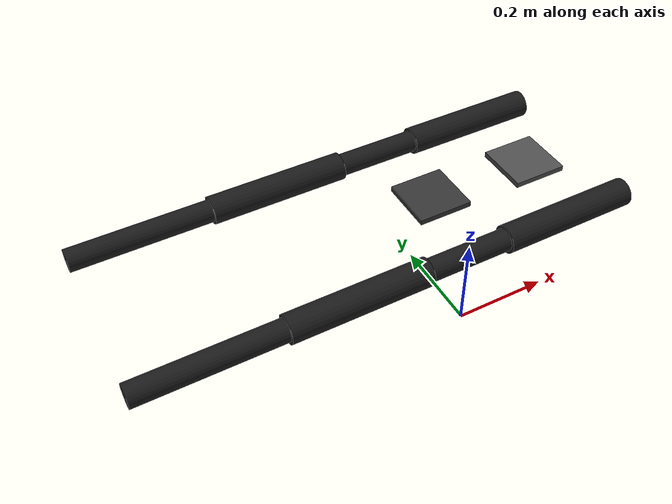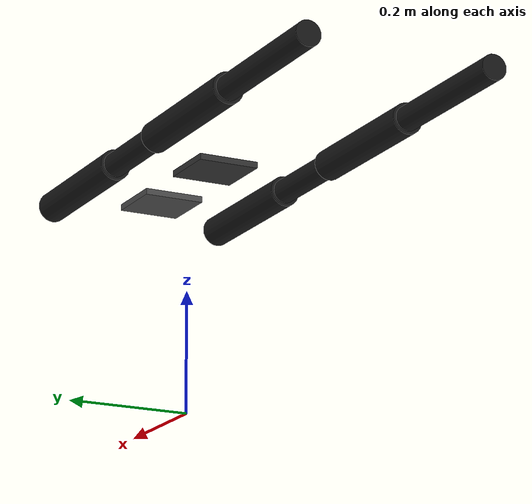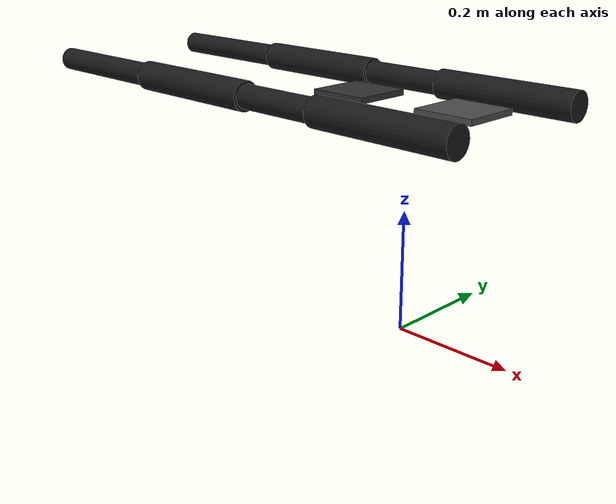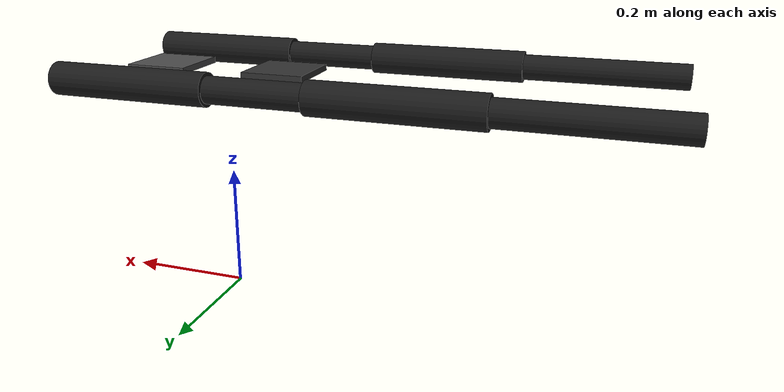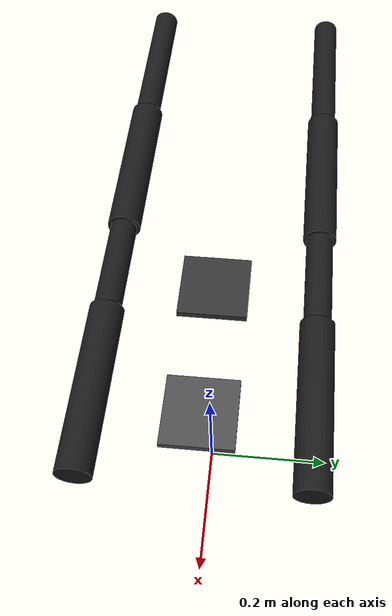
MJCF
<mujoco model="3D_Quad">
  <compiler angle="radian"/>
  <worldbody>
    <body name="torso_front_link" pos="0 0 0.375">
      <inertial pos="-0.0285714 0 0" quat="0.5 0.5 0.5 0.5" mass="1.4" diaginertia="0.0162471 0.0162471 0.00045"/>
      <joint name="world_to_torso_front_joint" type="free" limited="false" actuatorfrclimited="false"/>
      <geom size="0.05 0.05 0.005" pos="0.1 0 0" type="box" rgba="0.3 0.3 0.3 1"/>
      <geom size="0.05 0.05 0.005" pos="-0.1 0 0" type="box" rgba="0.2 0.2 0.2 1"/>

      <body name="FLHAA_link" pos="0.2 0.15 0" quat="0.707105 0 0.707108 0">
        <inertial pos="0 0 0" mass="3.2" diaginertia="0.0025 0.0025 0.0025"/>
        <joint name="FLHAA" pos="0 0 0" axis="0 0 -1" range="-0.8727 0.8727" actuatorfrcrange="-60 60"/>

        <body name="FLHIP_link">
          <inertial pos="0 0 -0.125" mass="0.3" diaginertia="0.0028 0.0028 0.0001567"/>
          <joint name="FLHIP" pos="0 0 0" axis="0 -1 0" range="0 3.14159" actuatorfrcrange="-60 60"/>
          <geom size="0.025 0.125" pos="0 0 -0.125" type="cylinder" rgba="0.1 0.1 0.1 1"/>

          <body name="FLKNEE_link" pos="0 0 -0.25">
            <inertial pos="0 0 -0.125" mass="0.3" diaginertia="0.0026 0.0026 0.0001"/>
            <joint name="FLKNEE" pos="0 0 0" axis="0 -1 0" range="0 3.14159" actuatorfrcrange="-60 60"/>
            <geom size="0.02 0.125" pos="0 0 -0.125" type="cylinder" rgba="0.1 0.1 0.1 1"/>
          </body>
        </body>
      </body>

      <body name="FRHAA_link" pos="0.2 -0.15 0" quat="0.707105 0 0.707108 0">
        <inertial pos="0 0 0" mass="3.2" diaginertia="0.0025 0.0025 0.0025"/>
        <joint name="FRHAA" pos="0 0 0" axis="0 0 -1" range="-0.8727 0.8727" actuatorfrcrange="-60 60"/>
        <body name="FRHIP_link">
          <inertial pos="0 0 -0.125" mass="0.3" diaginertia="0.0028 0.0028 0.0001567"/>
          <joint name="FRHIP" pos="0 0 0" axis="0 -1 0" range="0 3.14159" actuatorfrcrange="-60 60"/>
          <geom size="0.025 0.125" pos="0 0 -0.125" type="cylinder" rgba="0.1 0.1 0.1 1"/>
          <body name="FRKNEE_link" pos="0 0 -0.25">
            <inertial pos="0 0 -0.125" mass="0.3" diaginertia="0.0026 0.0026 0.0001"/>
            <joint name="FRKNEE" pos="0 0 0" axis="0 -1 0" range="0 3.14159" actuatorfrcrange="-60 60"/>
            <geom size="0.02 0.125" pos="0 0 -0.125" type="cylinder" rgba="0.1 0.1 0.1 1"/>
          </body>
        </body>
      </body>
      <body name="RLHAA_link" pos="-0.2 0.15 0" quat="0.707105 0 0.707108 0">
        <inertial pos="0 0 0" mass="3.2" diaginertia="0.0025 0.0025 0.0025"/>
        <joint name="RLHAA" pos="0 0 0" axis="0 0 -1" range="-0.8727 0.8727" actuatorfrcrange="-60 60"/>
        <body name="RLHIP_link">
          <inertial pos="0 0 -0.125" mass="0.3" diaginertia="0.0028 0.0028 0.0001567"/>
          <joint name="RLHIP" pos="0 0 0" axis="0 -1 0" range="0 3.14159" actuatorfrcrange="-60 60"/>
          <geom size="0.025 0.125" pos="0 0 -0.125" type="cylinder" rgba="0.1 0.1 0.1 1"/>
          <body name="RLKNEE_link" pos="0 0 -0.25">
            <inertial pos="0 0 -0.125" mass="0.3" diaginertia="0.0026 0.0026 0.0001"/>
            <joint name="RLKNEE" pos="0 0 0" axis="0 -1 0" range="0 3.14159" actuatorfrcrange="-60 60"/>
            <geom size="0.02 0.125" pos="0 0 -0.125" type="cylinder" rgba="0.1 0.1 0.1 1"/>
          </body>
        </body>
      </body>
      <body name="RRHAA_link" pos="-0.2 -0.15 0" quat="0.707105 0 0.707108 0">
        <inertial pos="0 0 0" mass="3.2" diaginertia="0.0025 0.0025 0.0025"/>
        <joint name="RRHAA" pos="0 0 0" axis="0 0 -1" range="-0.8727 0.8727" actuatorfrcrange="-60 60"/>
        <body name="RRHIP_link">
          <inertial pos="0 0 -0.125" mass="0.3" diaginertia="0.0028 0.0028 0.0001567"/>
          <joint name="RRHIP" pos="0 0 0" axis="0 -1 0" range="0 3.14159" actuatorfrcrange="-60 60"/>
          <geom size="0.025 0.125" pos="0 0 -0.125" type="cylinder" rgba="0.1 0.1 0.1 1"/>
          <body name="RRKNEE_link" pos="0 0 -0.25">
            <inertial pos="0 0 -0.125" mass="0.3" diaginertia="0.0026 0.0026 0.0001"/>
            <joint name="RRKNEE" pos="0 0 0" axis="0 -1 0" range="0 3.14159" actuatorfrcrange="-60 60"/>
            <geom size="0.02 0.125" pos="0 0 -0.125" type="cylinder" rgba="0.1 0.1 0.1 1"/>
          </body>
        </body>
      </body>
    </body>
  </worldbody>
</mujoco>
